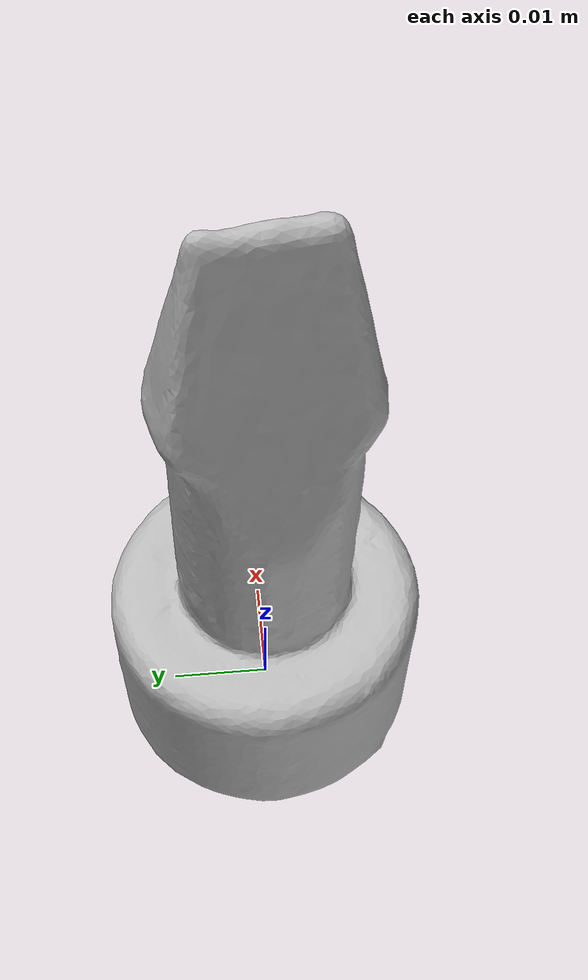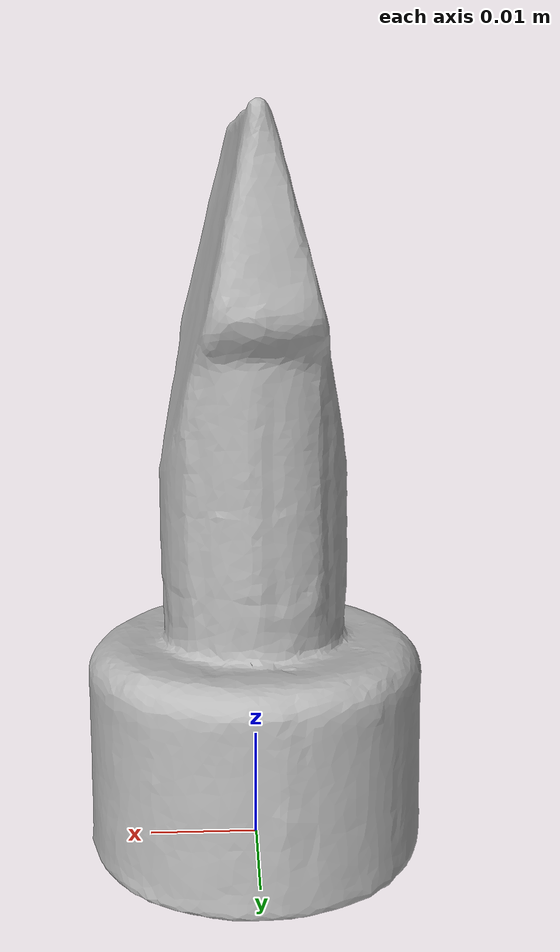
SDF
<?xml version="1.0" ?>
<sdf version='1.8'>
  <model name='ycb_072-e_toy_airplane'>
    <link name='body'>
      <inertial>
        <mass>0.0248517608922</mass>
        <pose>0.000114947407 -2.24540185e-05 0.0218109402 0 0 0</pose>
        <inertia>
          <ixx>7.43820352042e-06</ixx>
          <ixy>1.00763343165e-08</ixy>
          <ixz>-5.58216679151e-08</ixz>
          <iyy>7.38476825882e-06</iyy>
          <iyz>7.16887838856e-09</iyz>
          <izz>2.28070837971e-06</izz>
        </inertia>
      </inertial>
      <visual name='ycb_072-e_toy_airplane_visual'>
        <pose>0.015576 0.00773 -4.9e-05 0 0 0</pose>
        <geometry>
          <mesh>
            <uri>model://ycb_072-e_toy_airplane/meshes/textured.dae</uri>
          </mesh>
        </geometry>
      </visual>
      <collision name='ycb_072-e_toy_airplane_collision'>
        <pose>0.015576 0.00773 -4.9e-05 0 0 0</pose>
        <geometry>
          <mesh>
            <uri>model://ycb_072-e_toy_airplane/meshes/nontextured.stl</uri>
          </mesh>
        </geometry>
        <max_contacts>10</max_contacts>
        <surface>
          <contact>
            <ode>
              <kp>1e15</kp>
              <kd>1e13</kd>
            </ode>
          </contact>
        </surface>
      </collision>
    </link>
  </model>
</sdf>
